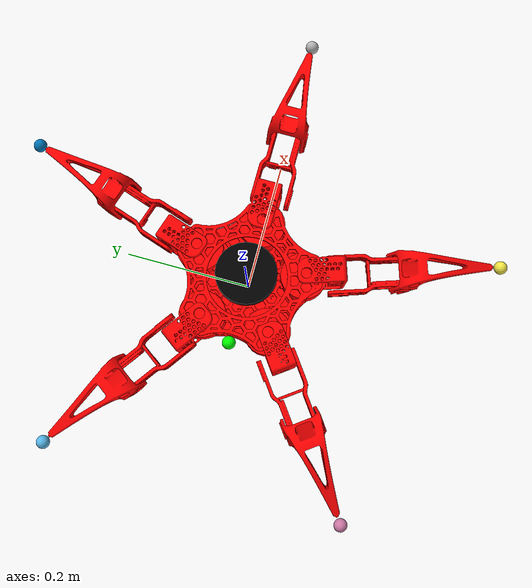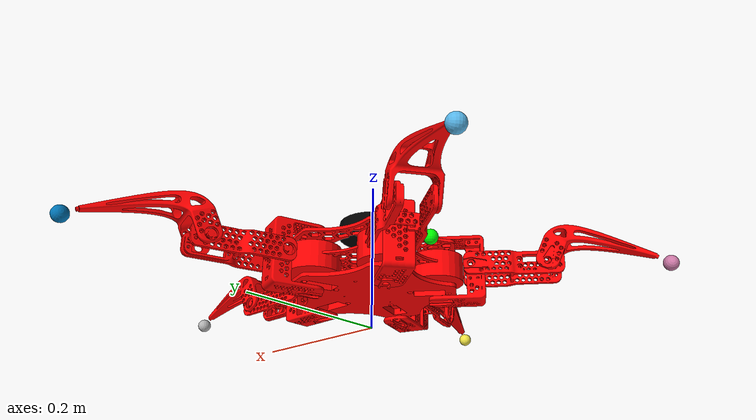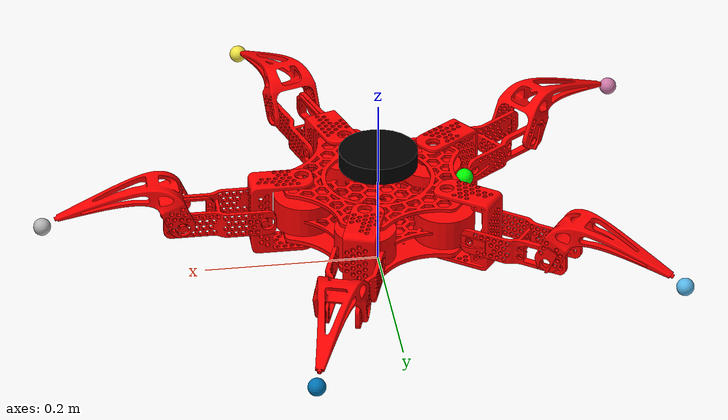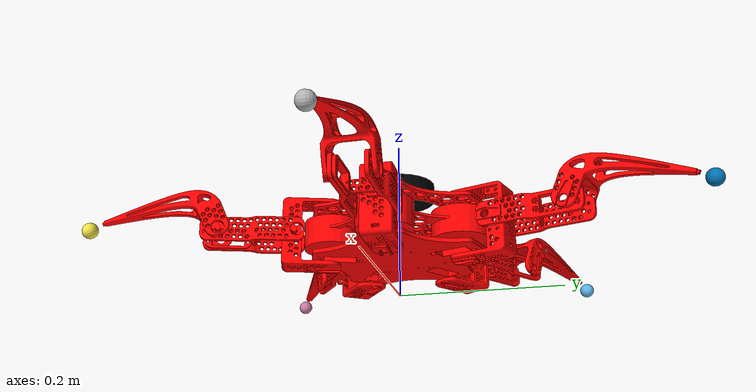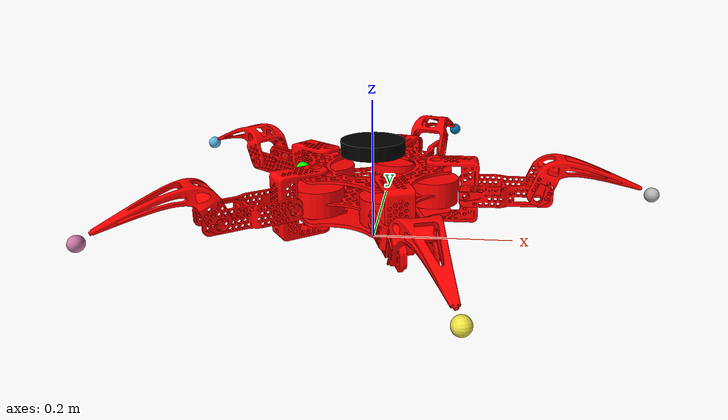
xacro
<?xml version="1.0"?>

<robot name="penta_bot" xmlns:xacro="http://www.ros.org/wiki/xacro">

  <xacro:arg name="name_space" default="" />
  <xacro:arg name="use_gazebo_simulation" default="False" />
  <xacro:arg name="use_mujoco_simulation" default="False" />
  <xacro:arg name="use_pca9685_ros2_control" default="False" />
  <xacro:arg name="use_rtrobot_ros2_control" default="False" />

  <xacro:include filename="$(find penta_description)/urdf/penta_robot_macro.urdf.xacro" />

  <xacro:add_penta_bot name_space="$(arg name_space)" use_gazebo_simulation="$(arg use_gazebo_simulation)" use_pca9685_ros2_control="$(arg use_pca9685_ros2_control)"/>

  <!-- gazebo ros2_control plugins -->
  <xacro:if value="$(arg use_gazebo_simulation)">
  <!-- Joint State Publisher -->
  <gazebo>
      <plugin filename="gz-sim-joint-state-publisher-system" name="gz::sim::systems::JointStatePublisher">
          <topic>joint_states</topic>
      </plugin>

      <plugin filename="gz_ros2_control-system" name="gz_ros2_control::GazeboSimROS2ControlPlugin">
          <parameters>$(find penta_description)/config/ros2_control_params.yaml</parameters>
      </plugin>
  </gazebo>
  </xacro:if>

  <!-- mujoco ros2_control top-level actuator / scene block -->
  <xacro:if value="$(arg use_mujoco_simulation)">
    <xacro:include filename="$(find penta_description)/ros2_control/mujoco.ros2_control.xacro" />
    <xacro:add_mujoco_top_level name_space="$(arg name_space)"/>
  </xacro:if>

  <!-- pca9685 ros2_control hardware interface plugin-->
  <xacro:if value="$(arg use_pca9685_ros2_control)">
    <xacro:include filename="$(find penta_description)/ros2_control/pca9685.ros2_control.xacro" />
    <xacro:add_pca9685_hw_interface name="pca9685" prefix="$(arg name_space)" use_mock_hardware="false"/>
  </xacro:if>

  <!-- rtrobot ros2_control hardware interface plugin-->
  <xacro:if value="$(arg use_rtrobot_ros2_control)">
    <xacro:include filename="$(find penta_description)/ros2_control/rtrobot.ros2_control.xacro" />
    <xacro:add_rtrobot_hw_interface name="rtrobot" prefix="$(arg name_space)"/>
  </xacro:if>

</robot>

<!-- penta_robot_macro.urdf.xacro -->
<robot xmlns:xacro="http://www.ros.org/wiki/xacro">

  <xacro:macro name="add_penta_bot" params="name_space use_gazebo_simulation use_pca9685_ros2_control">

    <xacro:property name="PI" value="3.141592" />
    <xacro:property name="PI2" value="${PI/2}" />
    <xacro:property name="base_visual_yaw" value="0.32" />

    <xacro:include filename="$(find penta_description)/urdf/single_limb.urdf.xacro" />
    <xacro:include filename="$(find penta_description)/urdf/lidar.urdf.xacro" />

    <xacro:macro name="add_material_green">
        <material name="green">
          <color rgba="0 1 0 1"/>
        </material>
    </xacro:macro>

    <xacro:macro name="add_material_red">
        <material name="red">
          <color rgba="1 0 0 1"/>
        </material>
    </xacro:macro>

    <xacro:macro name="add_material_black">
        <material name="black">
          <color rgba="0 0 0 1"/>
        </material>
    </xacro:macro>

    <link name="${name_space}base_footprint"/>

    <link name="${name_space}base_link">
      <visual>
        <geometry>
          <mesh filename="file://$(find penta_description)/meshes/visual/penta_stl_v1/Chassi_middle.stl" scale="0.001 0.001 0.001"/>
        </geometry>
        <origin xyz="0.0 0.0 0.0" rpy="0 0 ${base_visual_yaw}"/>
        <xacro:add_material_red/>
      </visual>
      <collision>
        <geometry>
          <cylinder radius="0.15" length="0.085"/>
        </geometry>
        <origin xyz="0.0 0.0 0.0" rpy="0 0 0"/>
      </collision>
      <inertial>
        <origin rpy="0 0 0" xyz="0.0 0.0 0.0"/>
        <mass value="1.0"/>
        <inertia ixx="1.0" ixy="0" ixz="0" iyy="1.0" iyz="0" izz="1.0"/>
      </inertial>
    </link>

    <joint name="joint_robot_body_center" type="fixed">
      <parent link="${name_space}base_footprint"/>
      <child link="${name_space}base_link"/>
      <origin xyz="0.0 0.0 0.075" rpy="0 0 0"/>
    </joint>

    <link name="${name_space}head_link">
      <visual>
        <geometry>
          <sphere radius="0.01"/>
        </geometry>
        <xacro:add_material_green/>
      </visual>
    </link>

    <joint name="head_base" type="fixed">
      <parent link="${name_space}base_link"/>
      <child link="${name_space}head_link"/>
      <origin xyz="-0.1 0.0 0.025" rpy="0 0 0"/>
    </joint>

    <xacro:macro name="add_base_plate" params="name_space name stl_file_name z">
      <link name="${name_space}${name}_link">
        <visual>
          <geometry>
            <mesh filename="file://$(find penta_description)/meshes/visual/penta_stl_v1/${stl_file_name}" scale="0.001 0.001 0.001"/>
          </geometry>
          <origin xyz="0.0 0.0 0.0" rpy="0 0 ${base_visual_yaw}"/>
          <xacro:add_material_red/>
        </visual>
      </link>
      <joint name="${name}_joint" type="fixed">
        <parent link="${name_space}base_link"/>
        <child link="${name_space}${name}_link"/>
      <origin xyz="0.0 0.0 ${z}" rpy="0 0 0"/>
    </joint>
    </xacro:macro>

    <xacro:add_leg prefix="limb0" shoulderxyz="${0.085*cos(0.*3.141592/2.5)} ${0.085*sin(0.*3.141592/2.5)} 0." shoulderrpy="0. 0. ${(0.*3.141592/2.5)}" name_space="${name_space}" use_gazebo_simulation="${use_gazebo_simulation}"/>
    <xacro:add_leg prefix="limb1" shoulderxyz="${0.085*cos(1.*3.141592/2.5)} ${0.085*sin(1.*3.141592/2.5)} 0." shoulderrpy="0. 0. ${(1.*3.141592/2.5)}" name_space="${name_space}" use_gazebo_simulation="${use_gazebo_simulation}"/>
    <xacro:add_leg prefix="limb2" shoulderxyz="${0.085*cos(2.*3.141592/2.5)} ${0.085*sin(2.*3.141592/2.5)} 0." shoulderrpy="0. 0. ${(2.*3.141592/2.5)}" name_space="${name_space}" use_gazebo_simulation="${use_gazebo_simulation}"/>
    <xacro:add_leg prefix="limb3" shoulderxyz="${0.085*cos(3.*3.141592/2.5)} ${0.085*sin(3.*3.141592/2.5)} 0." shoulderrpy="0. 0. ${(3.*3.141592/2.5)}" name_space="${name_space}" use_gazebo_simulation="${use_gazebo_simulation}"/>
    <xacro:add_leg prefix="limb4" shoulderxyz="${0.085*cos(4.*3.141592/2.5)} ${0.085*sin(4.*3.141592/2.5)} 0." shoulderrpy="0. 0. ${(4.*3.141592/2.5)}" name_space="${name_space}" use_gazebo_simulation="${use_gazebo_simulation}"/>

    <xacro:add_base_plate name="upper_plate" name_space="${name_space}" stl_file_name="Chassi_top.stl" z="0.03"/>
    <xacro:add_base_plate name="lower_plate" name_space="${name_space}" stl_file_name="Chassi_bottom.stl" z="-0.03"/>
    <xacro:add_lidar name_space="${name_space}" xyz="0 0 0.06" rpy="0 0 0" use_gazebo_simulation="${use_gazebo_simulation}"/>

  </xacro:macro>

</robot>

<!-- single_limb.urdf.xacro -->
<robot xmlns:xacro="http://www.ros.org/wiki/xacro">

  <xacro:macro name="add_leg" params="name_space prefix shoulderxyz shoulderrpy use_gazebo_simulation">
    <link name="${name_space}${prefix}_shoulder_motor">
      <visual>
        <geometry>
          <cylinder radius="0.0350" length="0.035"/>
        </geometry>
        <origin xyz="0.0 0.0 0.0" rpy="0 0 0"/>
        <xacro:add_material_red/>
      </visual>
      <inertial>
        <origin rpy="0 0 0" xyz="0.0 0.0 0.0"/>
        <mass value="1.0"/>
        <inertia ixx="1.0" ixy="0" ixz="0" iyy="1.0" iyz="0" izz="1.0"/>
      </inertial>
    </link>

    <link name="${name_space}${prefix}_shoulder_link">
      <visual>
        <geometry>
          <mesh filename="file://$(find penta_description)/meshes/visual/penta_stl_v1/Shoulder.stl" scale="0.001 0.001 0.001"/>
        </geometry>
        <origin xyz="0.0 0.0 0.0" rpy="-${PI2} 0 0"/>
        <xacro:add_material_red/>
      </visual>
      <inertial>
        <origin rpy="0 0 0" xyz="0.0 0.0 0.0"/>
        <mass value="1.0"/>
        <inertia ixx="1.0" ixy="0" ixz="0" iyy="1.0" iyz="0" izz="1.0"/>
      </inertial>
    </link>

    <link name="${name_space}${prefix}_upper_arm_link">
      <visual>
        <geometry>
          <mesh filename="file://$(find penta_description)/meshes/visual/penta_stl_v1/Upper_arm.stl" scale="0.001 0.001 0.001"/>
        </geometry>
        <origin xyz="0.0 0.0 0.0" rpy="0 0 0"/>
        <xacro:add_material_red/>
      </visual>
      <inertial>
        <origin rpy="0 0 0" xyz="0.0 0.0 0.0"/>
        <mass value="1.0"/>
        <inertia ixx="1.0" ixy="0" ixz="0" iyy="1.0" iyz="0" izz="1.0"/>
      </inertial>
    </link>

    <link name="${name_space}${prefix}_lower_arm_link">
      <visual>
        <geometry>
          <mesh filename="file://$(find penta_description)/meshes/visual/penta_stl_v1/Lower_arm.stl" scale="0.001 0.001 0.001"/>
        </geometry>
        <origin xyz="0.0 0.0 0.0" rpy="-${PI2} ${PI2} 0.41"/>
        <xacro:add_material_red/>
      </visual>
      <inertial>
        <origin rpy="0 0 0" xyz="0.0 0.0 0.0"/>
        <mass value="1.0"/>
        <inertia ixx="1.0" ixy="0" ixz="0" iyy="1.0" iyz="0" izz="1.0"/>
      </inertial>
    </link>

    <link name="${name_space}${prefix}_foot">
      <visual>
        <geometry>
          <sphere radius="0.01"/>
        </geometry>
        <origin xyz="0.158 0.0 0.0" rpy="0.0 0.0 0.0"/>
      </visual>
      <inertial>
        <origin rpy="0 0 0" xyz="0.0 0.0 0.0"/>
        <mass value="0.1"/>
        <inertia ixx="0.001" ixy="0" ixz="0" iyy="0.001" iyz="0" izz="0.001"/>
      </inertial>
      <collision>
        <geometry>
          <sphere radius="0.015"/>
        </geometry>
        <origin xyz="0.158 0.0 0.0" rpy="0.0 0.0 0.0"/>
        <surface>
            <friction>
              <!-- this is for ODE -->
              <ode>
                <mu>2.0</mu>
                <mu2>2.0</mu2>
                <fdir1>1 0 0</fdir1>
              </ode>
              <!-- this is for Bullet -->
              <bullet>
                <friction>2.0</friction>
              </bullet>
            </friction>
            <contact>
              <ode>
                <kp>100000.0</kp>
                <kd>100.0</kd>
                <min_depth>0.001</min_depth>
                <max_vel>0.1</max_vel>
              </ode>
              <bullet>
                <soft_cfm>0.0</soft_cfm>
                <soft_erp>0.2</soft_erp>
                <bounce>0.0</bounce>
                <bounce_threshold>1.0</bounce_threshold>
              </bullet>
            </contact>
        </surface>
      </collision>
    </link>

    <joint name="${prefix}/joint_shoulder_motor" type="fixed">
      <parent link="${name_space}base_link"/>
      <child link="${name_space}${prefix}_shoulder_motor"/>
      <origin xyz="${shoulderxyz}" rpy="${shoulderrpy}"/>
    </joint>

    <joint name="${prefix}/joint0" type="continuous">
      <parent link="${name_space}${prefix}_shoulder_motor"/>
      <child link="${name_space}${prefix}_shoulder_link"/>
      <origin xyz="0.0 0.0 0.0" rpy="0 0 0"/>
      <axis xyz="0 0 1" />
    </joint>

    <joint name="${prefix}/joint1" type="continuous">
      <parent link="${name_space}${prefix}_shoulder_link"/>
      <child link="${name_space}${prefix}_upper_arm_link"/>
      <origin xyz="0.0455 0.0 0.0" rpy="-1.57 0 0"/>
      <axis xyz="0 0 1" />
    </joint>

    <joint name="${prefix}/joint2" type="continuous">
      <parent link="${name_space}${prefix}_upper_arm_link"/>
      <child link="${name_space}${prefix}_lower_arm_link"/>
      <origin xyz="0.096 0.0 0.0" rpy="0 0 0"/>
      <axis xyz="0 0 1" />
    </joint>

    <joint name="${prefix}/joint3" type="fixed">
      <parent link="${name_space}${prefix}_lower_arm_link"/>
      <child link="${name_space}${prefix}_foot"/>
      <origin xyz="0.0 0.0 0.0" rpy="0 0 0"/>
    </joint>

  <xacro:if value="${use_gazebo_simulation}">
    <!-- ros2_control interfaces for each joint -->
    <ros2_control name="${name_space}${prefix}_ros2_control" type="system">
      <hardware>
        <plugin>gz_ros2_control/GazeboSimSystem</plugin>
      </hardware>

      <joint name="${prefix}/joint0">
        <command_interface name="position"/>
        <state_interface name="position">
          <param name="initial_value">0.0</param>
        </state_interface>
        <state_interface name="velocity"/>
      </joint>
      <joint name="${prefix}/joint1">
        <command_interface name="position"/>
        <state_interface name="position">
          <param name="initial_value">-0.6</param>
        </state_interface>
        <state_interface name="velocity"/>
      </joint>
      <joint name="${prefix}/joint2">
        <command_interface name="position"/>
        <state_interface name="position">
          <param name="initial_value">0.7</param>
        </state_interface>
        <state_interface name="velocity"/>
      </joint>
    </ros2_control>

    <!-- Transmission blocks -->
    <transmission name="${prefix}_joint0_trans">
      <type>transmission_interface/SimpleTransmission</type>
      <joint name="${prefix}/joint0">
        <hardwareInterface>hardware_interface/PositionJointInterface</hardwareInterface>
      </joint>
      <actuator name="${prefix}_motor0">
        <hardwareInterface>hardware_interface/PositionJointInterface</hardwareInterface>
        <mechanicalReduction>1</mechanicalReduction>
      </actuator>
    </transmission>

    <transmission name="${prefix}_joint1_trans">
      <type>transmission_interface/SimpleTransmission</type>
      <joint name="${prefix}/joint1">
        <hardwareInterface>hardware_interface/PositionJointInterface</hardwareInterface>
      </joint>
      <actuator name="${prefix}_motor1">
        <hardwareInterface>hardware_interface/PositionJointInterface</hardwareInterface>
        <mechanicalReduction>1</mechanicalReduction>
      </actuator>
    </transmission>

    <transmission name="${prefix}_joint2_trans">
      <type>transmission_interface/SimpleTransmission</type>
      <joint name="${prefix}/joint2">
        <hardwareInterface>hardware_interface/PositionJointInterface</hardwareInterface>
      </joint>
      <actuator name="${prefix}_motor2">
        <hardwareInterface>hardware_interface/PositionJointInterface</hardwareInterface>
        <mechanicalReduction>1</mechanicalReduction>
      </actuator>
    </transmission>
  </xacro:if>

  </xacro:macro>

</robot>

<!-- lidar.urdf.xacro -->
<robot xmlns:xacro="http://www.ros.org/wiki/xacro">

  <xacro:macro name="add_lidar" params="name_space xyz rpy use_gazebo_simulation">
    <link name="${name_space}laser_frame">
      <visual>
        <geometry>
          <cylinder radius="0.0450" length="0.02"/>
        </geometry>
        <origin xyz="0 0 0" rpy="0 0 0"/>
        <xacro:add_material_black/>
      </visual>
      <inertial>
        <origin rpy="0 0 0" xyz="0.0 0.0 0.0"/>
        <mass value="0.0001"/>
        <inertia ixx="0.0001" ixy="0" ixz="0" iyy="0.0001" iyz="0" izz="0.0001"/>
      </inertial>
    </link>

    <joint name="laser_joint" type="fixed">
      <parent link="${name_space}base_link"/>
      <child link="${name_space}laser_frame"/>
      <origin xyz="${xyz}" rpy="${rpy}"/>
    </joint>

    <xacro:if value="$(arg use_gazebo_simulation)">
      <!-- Laser lidar -->
      <gazebo reference="${name_space}laser_frame">
        <material>Gazebo/Black</material>

        <sensor name="${name_space}laser" type="gpu_lidar">
          <pose> 0 0 0 0 0 0 </pose>
          <visualize>false</visualize>
          <update_rate>10</update_rate>
          <lidar>
            <scan>
              <horizontal>
                <samples>360</samples>
                <min_angle>-3.14</min_angle>
                <max_angle>3.14</max_angle>
              </horizontal>
            </scan>
            <range>
              <min>0.3</min>
              <max>12</max>
            </range>
          </lidar>
          <topic>${name_space}/gz/scan</topic>
        </sensor>
      </gazebo>
    </xacro:if>

  </xacro:macro>

</robot>
